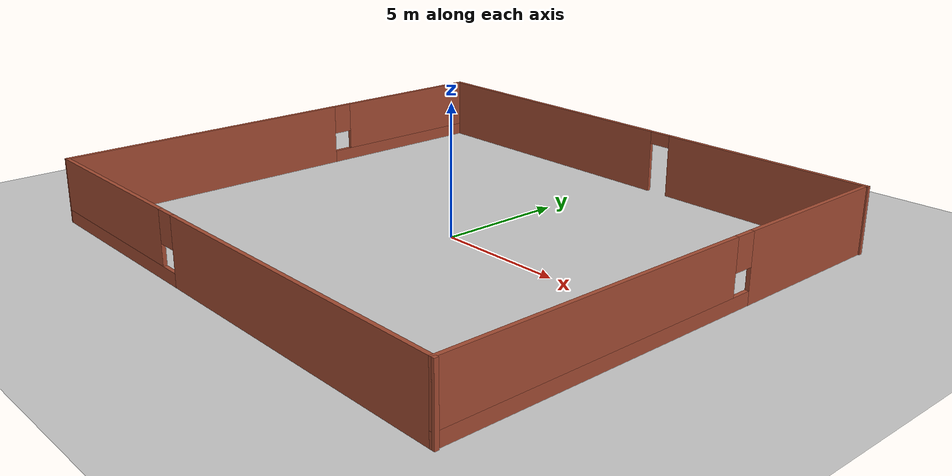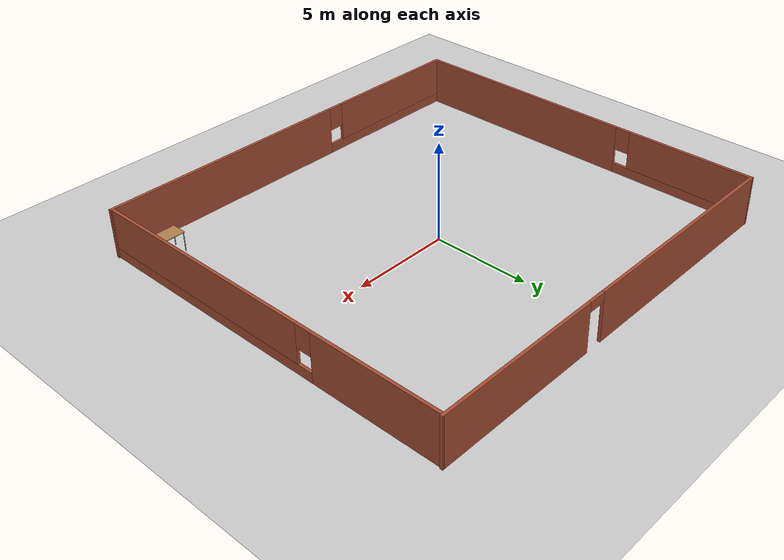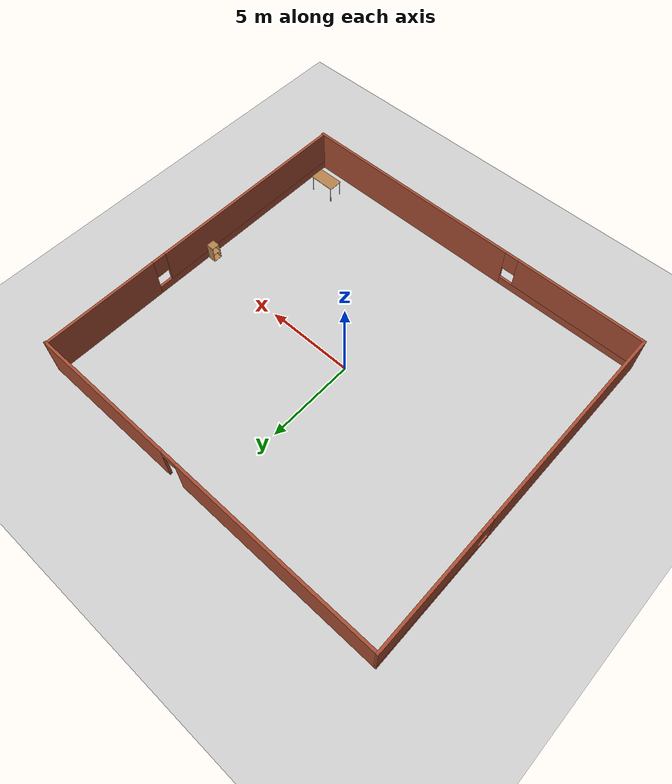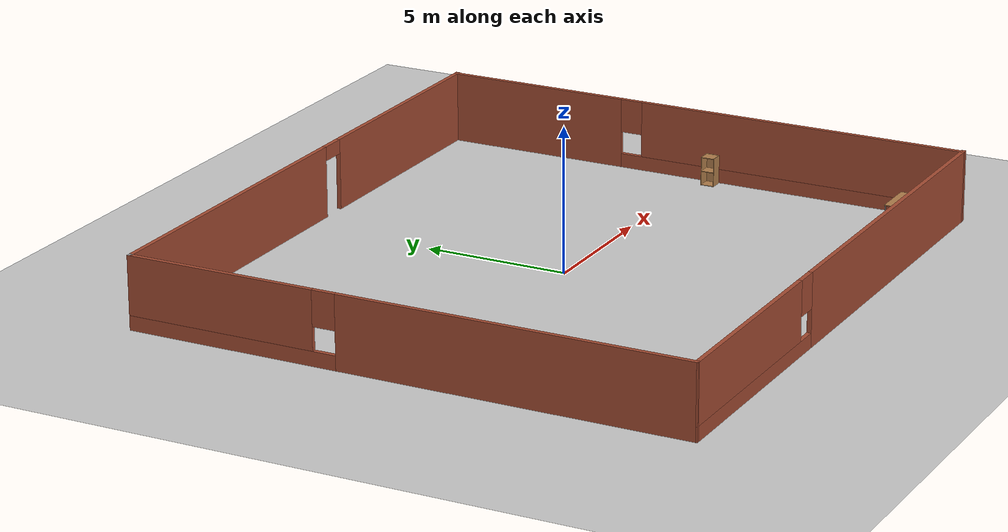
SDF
<sdf version="1.6">
 <world name="default">
  <model name="ground_plane">
   <static>1</static>
   <link name="link">
    <collision name="collision">
     <geometry><plane><normal>0 0 1</normal><size>100 100</size></plane></geometry>
     <surface>
      <contact><collide_bitmask>65535</collide_bitmask></contact>
      <friction><ode><mu>100</mu><mu2>50</mu2></ode></friction>
     </surface>
    </collision>
    <visual name="visual">
     <cast_shadows>0</cast_shadows>
     <geometry><plane><normal>0 0 1</normal><size>100 100</size></plane></geometry>
     <material>
      <script><uri>file://media/materials/scripts/gazebo.material</uri><name>Gazebo/Grey</name></script>
     </material>
    </visual>
   </link>
  </model>
  <model name="walls">
   <link name="Wall_1">
    <pose>0 9.675 0 0 0 -0.000732</pose>
    <visual name="Wall_1_Visual_0">
     <pose>-4.71484 0 1.25 0 -0 0</pose>
     <geometry><box><size>11.8286 0.15 2.5</size></box></geometry>
     <material>
      <script><uri>file://media/materials/scripts/gazebo.material</uri><name>Gazebo/Bricks</name></script>
      <ambient>1 1 1 1</ambient>
     </material>
     <meta><layer>0</layer></meta>
    </visual>
    <collision name="Wall_1_Collision_0">
     <geometry><box><size>11.8286 0.15 2.5</size></box></geometry>
     <pose>-4.71484 0 1.25 0 -0 0</pose>
    </collision>
    <visual name="Wall_1_Visual_1">
     <pose>6.36432 0 1.25 0 -0 0</pose>
     <geometry><box><size>8.52967 0.15 2.5</size></box></geometry>
     <material>
      <script><uri>file://media/materials/scripts/gazebo.material</uri><name>Gazebo/Bricks</name></script>
      <ambient>1 1 1 1</ambient>
     </material>
     <meta><layer>0</layer></meta>
    </visual>
    <collision name="Wall_1_Collision_1">
     <geometry><box><size>8.52967 0.15 2.5</size></box></geometry>
     <pose>6.36432 0 1.25 0 -0 0</pose>
    </collision>
    <visual name="Wall_1_Visual_2">
     <pose>1.64948 0 2.25 0 -0 0</pose>
     <geometry><box><size>0.9 0.15 0.5</size></box></geometry>
     <material>
      <script><uri>file://media/materials/scripts/gazebo.material</uri><name>Gazebo/Bricks</name></script>
      <ambient>1 1 1 1</ambient>
     </material>
     <meta><layer>0</layer></meta>
    </visual>
    <collision name="Wall_1_Collision_2">
     <geometry><box><size>0.9 0.15 0.5</size></box></geometry>
     <pose>1.64948 0 2.25 0 -0 0</pose>
    </collision>
   </link>
   <link name="Wall_2">
    <pose>10.5007 -0.007722 0 0 0 -1.5708</pose>
    <visual name="Wall_2_Visual_0">
     <pose>-6.40376 0 1.25 0 -0 0</pose>
     <geometry><box><size>6.69249 0.15 2.5</size></box></geometry>
     <material>
      <script><uri>file://media/materials/scripts/gazebo.material</uri><name>Gazebo/Bricks</name></script>
      <ambient>1 1 1 1</ambient>
     </material>
     <meta><layer>0</layer></meta>
    </visual>
    <collision name="Wall_2_Collision_0">
     <geometry><box><size>6.69249 0.15 2.5</size></box></geometry>
     <pose>-6.40376 0 1.25 0 -0 0</pose>
    </collision>
    <visual name="Wall_2_Visual_1">
     <pose>3.34624 0 0.25 0 -0 0</pose>
     <geometry><box><size>12.8075 0.15 0.5</size></box></geometry>
     <material>
      <script><uri>file://media/materials/scripts/gazebo.material</uri><name>Gazebo/Bricks</name></script>
      <ambient>1 1 1 1</ambient>
     </material>
     <meta><layer>0</layer></meta>
    </visual>
    <collision name="Wall_2_Collision_1">
     <geometry><box><size>12.8075 0.15 0.5</size></box></geometry>
     <pose>3.34624 0 0.25 0 -0 0</pose>
    </collision>
    <visual name="Wall_2_Visual_2">
     <pose>3.74624 0 1.5 0 -0 0</pose>
     <geometry><box><size>12.0075 0.15 2</size></box></geometry>
     <material>
      <script><uri>file://media/materials/scripts/gazebo.material</uri><name>Gazebo/Bricks</name></script>
      <ambient>1 1 1 1</ambient>
     </material>
     <meta><layer>0</layer></meta>
    </visual>
    <collision name="Wall_2_Collision_2">
     <geometry><box><size>12.0075 0.15 2</size></box></geometry>
     <pose>3.74624 0 1.5 0 -0 0</pose>
    </collision>
    <visual name="Wall_2_Visual_3">
     <pose>-2.65751 0 1.9 0 -0 0</pose>
     <geometry><box><size>0.8 0.15 1.2</size></box></geometry>
     <material>
      <script><uri>file://media/materials/scripts/gazebo.material</uri><name>Gazebo/Bricks</name></script>
      <ambient>1 1 1 1</ambient>
     </material>
     <meta><layer>0</layer></meta>
    </visual>
    <collision name="Wall_2_Collision_3">
     <geometry><box><size>0.8 0.15 1.2</size></box></geometry>
     <pose>-2.65751 0 1.9 0 -0 0</pose>
    </collision>
   </link>
   <link name="Wall_3">
    <pose>0 -9.675 0 0 -0 3.14086</pose>
    <visual name="Wall_3_Visual_0">
     <pose>-4.12277 0 1.25 0 -0 0</pose>
     <geometry><box><size>13.0128 0.15 2.5</size></box></geometry>
     <material>
      <script><uri>file://media/materials/scripts/gazebo.material</uri><name>Gazebo/Bricks</name></script>
      <ambient>1 1 1 1</ambient>
     </material>
     <meta><layer>0</layer></meta>
    </visual>
    <collision name="Wall_3_Collision_0">
     <geometry><box><size>13.0128 0.15 2.5</size></box></geometry>
     <pose>-4.12277 0 1.25 0 -0 0</pose>
    </collision>
    <visual name="Wall_3_Visual_1">
     <pose>6.50638 0 0.25 0 -0 0</pose>
     <geometry><box><size>8.24555 0.15 0.5</size></box></geometry>
     <material>
      <script><uri>file://media/materials/scripts/gazebo.material</uri><name>Gazebo/Bricks</name></script>
      <ambient>1 1 1 1</ambient>
     </material>
     <meta><layer>0</layer></meta>
    </visual>
    <collision name="Wall_3_Collision_1">
     <geometry><box><size>8.24555 0.15 0.5</size></box></geometry>
     <pose>6.50638 0 0.25 0 -0 0</pose>
    </collision>
    <visual name="Wall_3_Visual_2">
     <pose>6.90638 0 1.5 0 -0 0</pose>
     <geometry><box><size>7.44555 0.15 2</size></box></geometry>
     <material>
      <script><uri>file://media/materials/scripts/gazebo.material</uri><name>Gazebo/Bricks</name></script>
      <ambient>1 1 1 1</ambient>
     </material>
     <meta><layer>0</layer></meta>
    </visual>
    <collision name="Wall_3_Collision_2">
     <geometry><box><size>7.44555 0.15 2</size></box></geometry>
     <pose>6.90638 0 1.5 0 -0 0</pose>
    </collision>
    <visual name="Wall_3_Visual_3">
     <pose>2.78361 0 1.9 0 -0 0</pose>
     <geometry><box><size>0.8 0.15 1.2</size></box></geometry>
     <material>
      <script><uri>file://media/materials/scripts/gazebo.material</uri><name>Gazebo/Bricks</name></script>
      <ambient>1 1 1 1</ambient>
     </material>
     <meta><layer>0</layer></meta>
    </visual>
    <collision name="Wall_3_Collision_3">
     <geometry><box><size>0.8 0.15 1.2</size></box></geometry>
     <pose>2.78361 0 1.9 0 -0 0</pose>
    </collision>
   </link>
   <link name="Wall_4">
    <pose>-10.5542 0.007721 0 0 -0 1.5708</pose>
    <visual name="Wall_4_Visual_0">
     <pose>-3.71213 0 1.25 0 -0 0</pose>
     <geometry><box><size>12.0757 0.15 2.5</size></box></geometry>
     <material>
      <script><uri>file://media/materials/scripts/gazebo.material</uri><name>Gazebo/Bricks</name></script>
      <ambient>1 1 1 1</ambient>
     </material>
     <meta><layer>0</layer></meta>
    </visual>
    <collision name="Wall_4_Collision_0">
     <geometry><box><size>12.0757 0.15 2.5</size></box></geometry>
     <pose>-3.71213 0 1.25 0 -0 0</pose>
    </collision>
    <visual name="Wall_4_Visual_1">
     <pose>6.03787 0 0.25 0 -0 0</pose>
     <geometry><box><size>7.42427 0.15 0.5</size></box></geometry>
     <material>
      <script><uri>file://media/materials/scripts/gazebo.material</uri><name>Gazebo/Bricks</name></script>
      <ambient>1 1 1 1</ambient>
     </material>
     <meta><layer>0</layer></meta>
    </visual>
    <collision name="Wall_4_Collision_1">
     <geometry><box><size>7.42427 0.15 0.5</size></box></geometry>
     <pose>6.03787 0 0.25 0 -0 0</pose>
    </collision>
    <visual name="Wall_4_Visual_2">
     <pose>6.43787 0 1.5 0 -0 0</pose>
     <geometry><box><size>6.62427 0.15 2</size></box></geometry>
     <material>
      <script><uri>file://media/materials/scripts/gazebo.material</uri><name>Gazebo/Bricks</name></script>
      <ambient>1 1 1 1</ambient>
     </material>
     <meta><layer>0</layer></meta>
    </visual>
    <collision name="Wall_4_Collision_2">
     <geometry><box><size>6.62427 0.15 2</size></box></geometry>
     <pose>6.43787 0 1.5 0 -0 0</pose>
    </collision>
    <visual name="Wall_4_Visual_3">
     <pose>2.72573 0 1.9 0 -0 0</pose>
     <geometry><box><size>0.8 0.15 1.2</size></box></geometry>
     <material>
      <script><uri>file://media/materials/scripts/gazebo.material</uri><name>Gazebo/Bricks</name></script>
      <ambient>1 1 1 1</ambient>
     </material>
     <meta><layer>0</layer></meta>
    </visual>
    <collision name="Wall_4_Collision_3">
     <geometry><box><size>0.8 0.15 1.2</size></box></geometry>
     <pose>2.72573 0 1.9 0 -0 0</pose>
    </collision>
   </link>
   <link name="Wall_5">
    <collision name="Wall_5_Collision">
     <geometry><box><size>0.15 0.15 2.5</size></box></geometry>
     <pose>0 0 1.25 0 -0 0</pose>
    </collision>
    <visual name="Wall_5_Visual">
     <pose>0 0 1.25 0 -0 0</pose>
     <geometry><box><size>0.15 0.15 2.5</size></box></geometry>
     <material>
      <script><uri>file://media/materials/scripts/gazebo.material</uri><name>Gazebo/Grey</name></script>
      <ambient>1 1 1 1</ambient>
     </material>
     <meta><layer>0</layer></meta>
    </visual>
    <pose>-10.5542 9.68272 0 0 -0 0</pose>
   </link>
   <static>1</static>
  </model>
  <model name="table">
   <static>1</static>
   <link name="link">
    <collision name="surface">
     <pose>0 0 1 0 -0 0</pose>
     <geometry><box><size>1.5 0.8 0.03</size></box></geometry>
     <surface><friction><ode><mu>0.6</mu><mu2>0.6</mu2></ode></friction></surface>
    </collision>
    <visual name="visual1">
     <pose>0 0 1 0 -0 0</pose>
     <geometry><box><size>1.5 0.8 0.03</size></box></geometry>
     <material>
      <script><uri>file://media/materials/scripts/gazebo.material</uri><name>Gazebo/Wood</name></script>
     </material>
    </visual>
    <collision name="front_left_leg">
     <pose>0.68 0.38 0.5 0 -0 0</pose>
     <geometry><cylinder><radius>0.02</radius><length>1</length></cylinder></geometry>
    </collision>
    <visual name="front_left_leg">
     <pose>0.68 0.38 0.5 0 -0 0</pose>
     <geometry><cylinder><radius>0.02</radius><length>1</length></cylinder></geometry>
     <material>
      <script><uri>file://media/materials/scripts/gazebo.material</uri><name>Gazebo/Grey</name></script>
     </material>
    </visual>
    <collision name="front_right_leg">
     <pose>0.68 -0.38 0.5 0 -0 0</pose>
     <geometry><cylinder><radius>0.02</radius><length>1</length></cylinder></geometry>
    </collision>
    <visual name="front_right_leg">
     <pose>0.68 -0.38 0.5 0 -0 0</pose>
     <geometry><cylinder><radius>0.02</radius><length>1</length></cylinder></geometry>
     <material>
      <script><uri>file://media/materials/scripts/gazebo.material</uri><name>Gazebo/Grey</name></script>
     </material>
    </visual>
    <collision name="back_right_leg">
     <pose>-0.68 -0.38 0.5 0 -0 0</pose>
     <geometry><cylinder><radius>0.02</radius><length>1</length></cylinder></geometry>
    </collision>
    <visual name="back_right_leg">
     <pose>-0.68 -0.38 0.5 0 -0 0</pose>
     <geometry><cylinder><radius>0.02</radius><length>1</length></cylinder></geometry>
     <material>
      <script><uri>file://media/materials/scripts/gazebo.material</uri><name>Gazebo/Grey</name></script>
     </material>
    </visual>
    <collision name="back_left_leg">
     <pose>-0.68 0.38 0.5 0 -0 0</pose>
     <geometry><cylinder><radius>0.02</radius><length>1</length></cylinder></geometry>
    </collision>
    <visual name="back_left_leg">
     <pose>-0.68 0.38 0.5 0 -0 0</pose>
     <geometry><cylinder><radius>0.02</radius><length>1</length></cylinder></geometry>
     <material>
      <script><uri>file://media/materials/scripts/gazebo.material</uri><name>Gazebo/Grey</name></script>
     </material>
    </visual>
   </link>
   <pose>8.98148 -8.2313 0 0 -0 0</pose>
  </model>
  <model name="cabinet">
   <static>1</static>
   <link name="cabinet_bottom_plate">
    <inertial>
     <pose>0 0 -1 0 -0 0</pose>
     <inertia><ixx>2.05</ixx><ixy>0</ixy><ixz>0</ixz><iyy>2.05</iyy><iyz>0</iyz><izz>2.05</izz></inertia>
     <mass>25</mass>
    </inertial>
    <collision name="cabinet_bottom_plate_geom">
     <pose>0 0 0.01 0 -0 0</pose>
     <geometry><box><size>0.45 0.45 0.02</size></box></geometry>
    </collision>
    <visual name="cabinet_bottom_plate_geom_visual">
     <pose>0 0 0.01 0 -0 0</pose>
     <geometry><box><size>0.45 0.45 0.02</size></box></geometry>
     <material>
      <script><uri>file://media/materials/scripts/gazebo.material</uri><name>Gazebo/Wood</name></script>
     </material>
    </visual>
    <collision name="cabinet_bottom_plate_geom_cabinet_back_plate">
     <pose>0.235 0 0.51 0 -0 0</pose>
     <geometry><box><size>0.02 0.45 1.02</size></box></geometry>
    </collision>
    <visual name="cabinet_bottom_plate_geom_cabinet_back_plate_visual">
     <pose>0.235 0 0.51 0 -0 0</pose>
     <geometry><box><size>0.02 0.45 1.02</size></box></geometry>
     <material>
      <script><uri>file://media/materials/scripts/gazebo.material</uri><name>Gazebo/Wood</name></script>
     </material>
    </visual>
    <collision name="cabinet_bottom_plate_geom_cabinet_left_plate">
     <pose>0 0.235 0.51 0 -0 0</pose>
     <geometry><box><size>0.45 0.02 1.02</size></box></geometry>
    </collision>
    <visual name="cabinet_bottom_plate_geom_cabinet_left_plate_visual">
     <pose>0 0.235 0.51 0 -0 0</pose>
     <geometry><box><size>0.45 0.02 1.02</size></box></geometry>
     <material>
      <script><uri>file://media/materials/scripts/gazebo.material</uri><name>Gazebo/Wood</name></script>
     </material>
    </visual>
    <collision name="cabinet_bottom_plate_geom_cabinet_middle_plate">
     <pose>0 0 0.51 0 -0 0</pose>
     <geometry><box><size>0.45 0.45 0.02</size></box></geometry>
    </collision>
    <visual name="cabinet_bottom_plate_geom_cabinet_middle_plate_visual">
     <pose>0 0 0.51 0 -0 0</pose>
     <geometry><box><size>0.45 0.45 0.02</size></box></geometry>
     <material>
      <script><uri>file://media/materials/scripts/gazebo.material</uri><name>Gazebo/Wood</name></script>
     </material>
    </visual>
    <collision name="cabinet_bottom_plate_geom_cabinet_right_plate">
     <pose>0 -0.235 0.51 0 -0 0</pose>
     <geometry><box><size>0.45 0.02 1.02</size></box></geometry>
    </collision>
    <visual name="cabinet_bottom_plate_geom_cabinet_right_plate_visual">
     <pose>0 -0.235 0.51 0 -0 0</pose>
     <geometry><box><size>0.45 0.02 1.02</size></box></geometry>
     <material>
      <script><uri>file://media/materials/scripts/gazebo.material</uri><name>Gazebo/Wood</name></script>
     </material>
    </visual>
    <collision name="cabinet_bottom_plate_geom_cabinet_top_plate">
     <pose>0 0 1.01 0 -0 0</pose>
     <geometry><box><size>0.45 0.45 0.02</size></box></geometry>
    </collision>
    <visual name="cabinet_bottom_plate_geom_cabinet_top_plate_visual">
     <pose>0 0 1.01 0 -0 0</pose>
     <geometry><box><size>0.45 0.45 0.02</size></box></geometry>
     <material>
      <script><uri>file://media/materials/scripts/gazebo.material</uri><name>Gazebo/Wood</name></script>
     </material>
    </visual>
   </link>
   <pose>10.1611 -0.530898 0 0 -0 0</pose>
  </model>
 </world>
</sdf>
